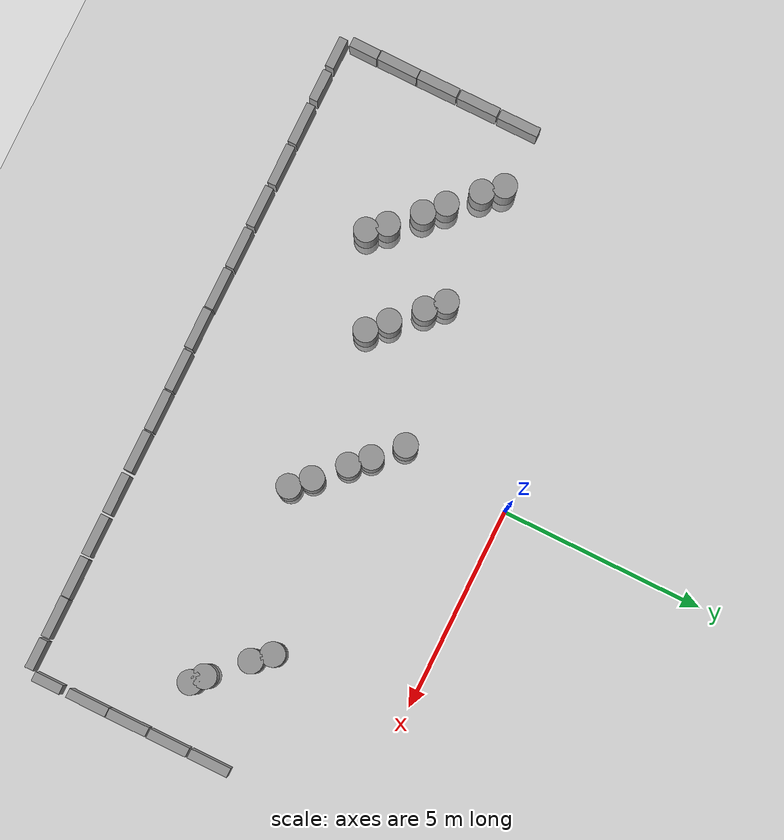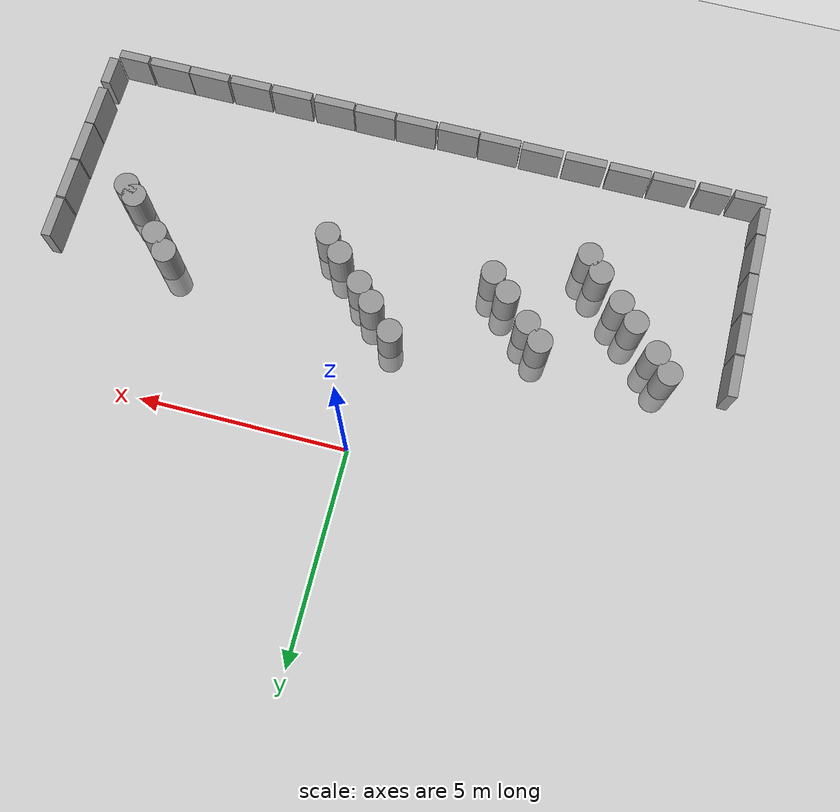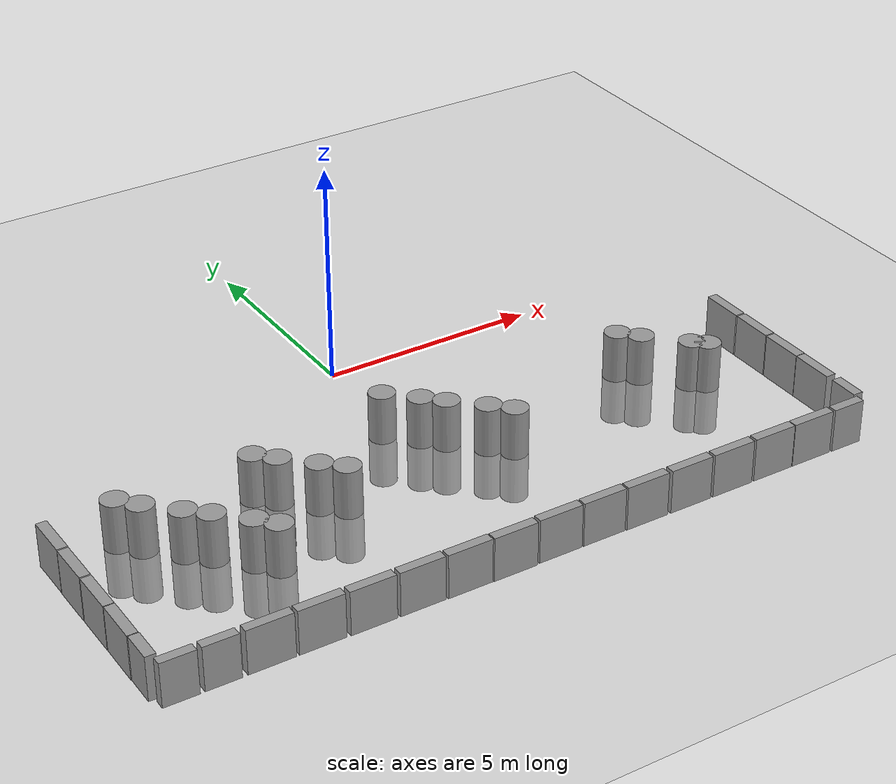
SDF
<sdf version="1.6">
 <world name="default">
  <model name="ground_plane">
   <static>1</static>
   <static>1</static>
   <link name="link">
    <collision name="collision">
     <geometry><plane><normal>0 0 1</normal><size>100 100</size></plane></geometry>
     <surface><friction><ode><mu>100</mu><mu2>50</mu2></ode></friction></surface>
    </collision>
    <visual name="visual">
     <cast_shadows>0</cast_shadows>
     <geometry><plane><normal>0 0 1</normal><size>100 100</size></plane></geometry>
     <material>
      <script><uri>file://media/materials/scripts/gazebo.material</uri><name>Gazebo/Grey</name></script>
     </material>
    </visual>
   </link>
  </model>
  <model name="unit_box_0_clone_10">
   <pose>8.12331 -3.52223 0.5 1e-06 1e-06 0.000121</pose>
   <link name="link">
    <inertial>
     <mass>1</mass>
     <inertia>
      <ixx>0.166667</ixx>
      <ixy>0</ixy>
      <ixz>0</ixz>
      <iyy>0.166667</iyy>
      <iyz>0</iyz>
      <izz>0.166667</izz>
     </inertia>
    </inertial>
    <collision name="collision"><geometry><box><size>0.230819 1 1</size></box></geometry></collision>
    <visual name="visual">
     <geometry><box><size>0.230819 1 1</size></box></geometry>
     <material>
      <script><name>Gazebo/Grey</name><uri>file://media/materials/scripts/gazebo.material</uri></script>
     </material>
    </visual>
   </link>
  </model>
  <model name="unit_box_0_clone_11">
   <pose>8.1233 -4.56316 0.5 1e-06 1e-06 0.000121</pose>
   <link name="link">
    <inertial>
     <mass>1</mass>
     <inertia>
      <ixx>0.166667</ixx>
      <ixy>0</ixy>
      <ixz>0</ixz>
      <iyy>0.166667</iyy>
      <iyz>0</iyz>
      <izz>0.166667</izz>
     </inertia>
    </inertial>
    <collision name="collision"><geometry><box><size>0.230819 1 1</size></box></geometry></collision>
    <visual name="visual">
     <geometry><box><size>0.230819 1 1</size></box></geometry>
     <material>
      <script><name>Gazebo/Grey</name><uri>file://media/materials/scripts/gazebo.material</uri></script>
     </material>
    </visual>
   </link>
  </model>
  <model name="unit_box_0_clone_12">
   <pose>8.11815 -5.59378 0.5 1e-06 1e-06 0.000121</pose>
   <link name="link">
    <inertial>
     <mass>1</mass>
     <inertia>
      <ixx>0.166667</ixx>
      <ixy>0</ixy>
      <ixz>0</ixz>
      <iyy>0.166667</iyy>
      <iyz>0</iyz>
      <izz>0.166667</izz>
     </inertia>
    </inertial>
    <collision name="collision"><geometry><box><size>0.230819 1 1</size></box></geometry></collision>
    <visual name="visual">
     <geometry><box><size>0.230819 1 1</size></box></geometry>
     <material>
      <script><name>Gazebo/Grey</name><uri>file://media/materials/scripts/gazebo.material</uri></script>
     </material>
    </visual>
   </link>
  </model>
  <model name="unit_box_0_clone_13">
   <pose>8.11333 -6.60776 0.5 -1e-06 1e-06 -0.005393</pose>
   <link name="link">
    <inertial>
     <mass>1</mass>
     <inertia>
      <ixx>0.166667</ixx>
      <ixy>0</ixy>
      <ixz>0</ixz>
      <iyy>0.166667</iyy>
      <iyz>0</iyz>
      <izz>0.166667</izz>
     </inertia>
    </inertial>
    <collision name="collision"><geometry><box><size>0.230819 1 1</size></box></geometry></collision>
    <visual name="visual">
     <geometry><box><size>0.230819 1 1</size></box></geometry>
     <material>
      <script><name>Gazebo/Grey</name><uri>file://media/materials/scripts/gazebo.material</uri></script>
     </material>
    </visual>
   </link>
  </model>
  <model name="unit_box_clone_15_clone_0">
   <pose>6.71207 -8.13102 0.499999 -1e-06 2e-06 0.00043</pose>
   <link name="link">
    <inertial>
     <mass>1</mass>
     <inertia>
      <ixx>0.166667</ixx>
      <ixy>0</ixy>
      <ixz>0</ixz>
      <iyy>0.166667</iyy>
      <iyz>0</iyz>
      <izz>0.166667</izz>
     </inertia>
    </inertial>
    <collision name="collision"><geometry><box><size>1 0.210541 1</size></box></geometry></collision>
    <visual name="visual">
     <geometry><box><size>1 0.210541 1</size></box></geometry>
     <material>
      <script><name>Gazebo/Grey</name><uri>file://media/materials/scripts/gazebo.material</uri></script>
     </material>
    </visual>
   </link>
  </model>
  <model name="unit_box_clone_15_clone_1">
   <pose>5.69715 -8.13101 0.499999 -1e-06 2e-06 0.00043</pose>
   <link name="link">
    <inertial>
     <mass>1</mass>
     <inertia>
      <ixx>0.166667</ixx>
      <ixy>0</ixy>
      <ixz>0</ixz>
      <iyy>0.166667</iyy>
      <iyz>0</iyz>
      <izz>0.166667</izz>
     </inertia>
    </inertial>
    <collision name="collision"><geometry><box><size>1 0.210541 1</size></box></geometry></collision>
    <visual name="visual">
     <geometry><box><size>1 0.210541 1</size></box></geometry>
     <material>
      <script><name>Gazebo/Grey</name><uri>file://media/materials/scripts/gazebo.material</uri></script>
     </material>
    </visual>
   </link>
  </model>
  <model name="unit_box_clone_15_clone_2">
   <pose>4.63881 -8.1372 0.499999 -1e-06 2e-06 0.00043</pose>
   <link name="link">
    <inertial>
     <mass>1</mass>
     <inertia>
      <ixx>0.166667</ixx>
      <ixy>0</ixy>
      <ixz>0</ixz>
      <iyy>0.166667</iyy>
      <iyz>0</iyz>
      <izz>0.166667</izz>
     </inertia>
    </inertial>
    <collision name="collision"><geometry><box><size>1 0.210541 1</size></box></geometry></collision>
    <visual name="visual">
     <geometry><box><size>1 0.210541 1</size></box></geometry>
     <material>
      <script><name>Gazebo/Grey</name><uri>file://media/materials/scripts/gazebo.material</uri></script>
     </material>
    </visual>
   </link>
  </model>
  <model name="unit_box_clone_15_clone_3">
   <pose>3.57975 -8.1372 0.499999 -1e-06 2e-06 0.00043</pose>
   <link name="link">
    <inertial>
     <mass>1</mass>
     <inertia>
      <ixx>0.166667</ixx>
      <ixy>0</ixy>
      <ixz>0</ixz>
      <iyy>0.166667</iyy>
      <iyz>0</iyz>
      <izz>0.166667</izz>
     </inertia>
    </inertial>
    <collision name="collision"><geometry><box><size>1 0.210541 1</size></box></geometry></collision>
    <visual name="visual">
     <geometry><box><size>1 0.210541 1</size></box></geometry>
     <material>
      <script><name>Gazebo/Grey</name><uri>file://media/materials/scripts/gazebo.material</uri></script>
     </material>
    </visual>
   </link>
  </model>
  <model name="unit_box_clone_15_clone_4">
   <pose>2.49815 -8.13719 0.499999 -1e-06 2e-06 0.00043</pose>
   <link name="link">
    <inertial>
     <mass>1</mass>
     <inertia>
      <ixx>0.166667</ixx>
      <ixy>0</ixy>
      <ixz>0</ixz>
      <iyy>0.166667</iyy>
      <iyz>0</iyz>
      <izz>0.166667</izz>
     </inertia>
    </inertial>
    <collision name="collision"><geometry><box><size>1 0.210541 1</size></box></geometry></collision>
    <visual name="visual">
     <geometry><box><size>1 0.210541 1</size></box></geometry>
     <material>
      <script><name>Gazebo/Grey</name><uri>file://media/materials/scripts/gazebo.material</uri></script>
     </material>
    </visual>
   </link>
  </model>
  <model name="unit_box_clone_15_clone_5">
   <pose>1.46162 -8.12592 0.499999 -1e-06 2e-06 0.00043</pose>
   <link name="link">
    <inertial>
     <mass>1</mass>
     <inertia>
      <ixx>0.166667</ixx>
      <ixy>0</ixy>
      <ixz>0</ixz>
      <iyy>0.166667</iyy>
      <iyz>0</iyz>
      <izz>0.166667</izz>
     </inertia>
    </inertial>
    <collision name="collision"><geometry><box><size>1 0.210541 1</size></box></geometry></collision>
    <visual name="visual">
     <geometry><box><size>1 0.210541 1</size></box></geometry>
     <material>
      <script><name>Gazebo/Grey</name><uri>file://media/materials/scripts/gazebo.material</uri></script>
     </material>
    </visual>
   </link>
  </model>
  <model name="unit_box_clone_15_clone_6">
   <pose>0.425095 -8.1259 0.499999 -1e-06 2e-06 0.00043</pose>
   <link name="link">
    <inertial>
     <mass>1</mass>
     <inertia>
      <ixx>0.166667</ixx>
      <ixy>0</ixy>
      <ixz>0</ixz>
      <iyy>0.166667</iyy>
      <iyz>0</iyz>
      <izz>0.166667</izz>
     </inertia>
    </inertial>
    <collision name="collision"><geometry><box><size>1 0.210541 1</size></box></geometry></collision>
    <visual name="visual">
     <geometry><box><size>1 0.210541 1</size></box></geometry>
     <material>
      <script><name>Gazebo/Grey</name><uri>file://media/materials/scripts/gazebo.material</uri></script>
     </material>
    </visual>
   </link>
  </model>
  <model name="unit_box_clone_15_clone_7">
   <pose>-0.633967 -8.14846 0.499999 -1e-06 2e-06 0.00043</pose>
   <link name="link">
    <inertial>
     <mass>1</mass>
     <inertia>
      <ixx>0.166667</ixx>
      <ixy>0</ixy>
      <ixz>0</ixz>
      <iyy>0.166667</iyy>
      <iyz>0</iyz>
      <izz>0.166667</izz>
     </inertia>
    </inertial>
    <collision name="collision"><geometry><box><size>1 0.210541 1</size></box></geometry></collision>
    <visual name="visual">
     <geometry><box><size>1 0.210541 1</size></box></geometry>
     <material>
      <script><name>Gazebo/Grey</name><uri>file://media/materials/scripts/gazebo.material</uri></script>
     </material>
    </visual>
   </link>
  </model>
  <model name="unit_box_clone_15_clone_8">
   <pose>-1.65923 -8.13717 0.499999 -1e-06 2e-06 0.00043</pose>
   <link name="link">
    <inertial>
     <mass>1</mass>
     <inertia>
      <ixx>0.166667</ixx>
      <ixy>0</ixy>
      <ixz>0</ixz>
      <iyy>0.166667</iyy>
      <iyz>0</iyz>
      <izz>0.166667</izz>
     </inertia>
    </inertial>
    <collision name="collision"><geometry><box><size>1 0.210541 1</size></box></geometry></collision>
    <visual name="visual">
     <geometry><box><size>1 0.210541 1</size></box></geometry>
     <material>
      <script><name>Gazebo/Grey</name><uri>file://media/materials/scripts/gazebo.material</uri></script>
     </material>
    </visual>
   </link>
  </model>
  <model name="unit_box_clone_15_clone_9">
   <pose>-2.70703 -8.12593 0.499999 -1e-06 2e-06 0.00043</pose>
   <link name="link">
    <inertial>
     <mass>1</mass>
     <inertia>
      <ixx>0.166667</ixx>
      <ixy>0</ixy>
      <ixz>0</ixz>
      <iyy>0.166667</iyy>
      <iyz>0</iyz>
      <izz>0.166667</izz>
     </inertia>
    </inertial>
    <collision name="collision"><geometry><box><size>1 0.210541 1</size></box></geometry></collision>
    <visual name="visual">
     <geometry><box><size>1 0.210541 1</size></box></geometry>
     <material>
      <script><name>Gazebo/Grey</name><uri>file://media/materials/scripts/gazebo.material</uri></script>
     </material>
    </visual>
   </link>
  </model>
  <model name="unit_box_clone_15_clone_10">
   <pose>-3.77736 -8.12592 0.499999 -1e-06 2e-06 0.00043</pose>
   <link name="link">
    <inertial>
     <mass>1</mass>
     <inertia>
      <ixx>0.166667</ixx>
      <ixy>0</ixy>
      <ixz>0</ixz>
      <iyy>0.166667</iyy>
      <iyz>0</iyz>
      <izz>0.166667</izz>
     </inertia>
    </inertial>
    <collision name="collision"><geometry><box><size>1 0.210541 1</size></box></geometry></collision>
    <visual name="visual">
     <geometry><box><size>1 0.210541 1</size></box></geometry>
     <material>
      <script><name>Gazebo/Grey</name><uri>file://media/materials/scripts/gazebo.material</uri></script>
     </material>
    </visual>
   </link>
  </model>
  <model name="unit_box_clone_15_clone_11">
   <pose>-4.85896 -8.11466 0.499999 -1e-06 2e-06 0.00043</pose>
   <link name="link">
    <inertial>
     <mass>1</mass>
     <inertia>
      <ixx>0.166667</ixx>
      <ixy>0</ixy>
      <ixz>0</ixz>
      <iyy>0.166667</iyy>
      <iyz>0</iyz>
      <izz>0.166667</izz>
     </inertia>
    </inertial>
    <collision name="collision"><geometry><box><size>1 0.210541 1</size></box></geometry></collision>
    <visual name="visual">
     <geometry><box><size>1 0.210541 1</size></box></geometry>
     <material>
      <script><name>Gazebo/Grey</name><uri>file://media/materials/scripts/gazebo.material</uri></script>
     </material>
    </visual>
   </link>
  </model>
  <model name="unit_box_clone_15_clone_12">
   <pose>-5.91802 -8.11464 0.499999 -1e-06 2e-06 0.00043</pose>
   <link name="link">
    <inertial>
     <mass>1</mass>
     <inertia>
      <ixx>0.166667</ixx>
      <ixy>0</ixy>
      <ixz>0</ixz>
      <iyy>0.166667</iyy>
      <iyz>0</iyz>
      <izz>0.166667</izz>
     </inertia>
    </inertial>
    <collision name="collision"><geometry><box><size>1 0.210541 1</size></box></geometry></collision>
    <visual name="visual">
     <geometry><box><size>1 0.210541 1</size></box></geometry>
     <material>
      <script><name>Gazebo/Grey</name><uri>file://media/materials/scripts/gazebo.material</uri></script>
     </material>
    </visual>
   </link>
  </model>
  <model name="unit_box_0_clone_4_clone_10">
   <pose>-8.13285 -3.6243 0.5 1e-06 1e-06 0.000121</pose>
   <link name="link">
    <inertial>
     <mass>1</mass>
     <inertia>
      <ixx>0.166667</ixx>
      <ixy>0</ixy>
      <ixz>0</ixz>
      <iyy>0.166667</iyy>
      <iyz>0</iyz>
      <izz>0.166667</izz>
     </inertia>
    </inertial>
    <collision name="collision"><geometry><box><size>0.230819 1 1</size></box></geometry></collision>
    <visual name="visual">
     <geometry><box><size>0.230819 1 1</size></box></geometry>
     <material>
      <script><name>Gazebo/Grey</name><uri>file://media/materials/scripts/gazebo.material</uri></script>
     </material>
    </visual>
   </link>
  </model>
  <model name="unit_box_0_clone_4_clone_11">
   <pose>-8.1396 -4.65747 0.5 1e-06 1e-06 0.000121</pose>
   <link name="link">
    <inertial>
     <mass>1</mass>
     <inertia>
      <ixx>0.166667</ixx>
      <ixy>0</ixy>
      <ixz>0</ixz>
      <iyy>0.166667</iyy>
      <iyz>0</iyz>
      <izz>0.166667</izz>
     </inertia>
    </inertial>
    <collision name="collision"><geometry><box><size>0.230819 1 1</size></box></geometry></collision>
    <visual name="visual">
     <geometry><box><size>0.230819 1 1</size></box></geometry>
     <material>
      <script><name>Gazebo/Grey</name><uri>file://media/materials/scripts/gazebo.material</uri></script>
     </material>
    </visual>
   </link>
  </model>
  <model name="unit_box_0_clone_4_clone_12">
   <pose>-8.1396 -5.69064 0.5 1e-06 1e-06 0.000121</pose>
   <link name="link">
    <inertial>
     <mass>1</mass>
     <inertia>
      <ixx>0.166667</ixx>
      <ixy>0</ixy>
      <ixz>0</ixz>
      <iyy>0.166667</iyy>
      <iyz>0</iyz>
      <izz>0.166667</izz>
     </inertia>
    </inertial>
    <collision name="collision"><geometry><box><size>0.230819 1 1</size></box></geometry></collision>
    <visual name="visual">
     <geometry><box><size>0.230819 1 1</size></box></geometry>
     <material>
      <script><name>Gazebo/Grey</name><uri>file://media/materials/scripts/gazebo.material</uri></script>
     </material>
    </visual>
   </link>
  </model>
  <model name="unit_box_0_clone_4_clone_13">
   <pose>-8.14113 -6.70872 0.5 -1e-06 1e-06 -0.008849</pose>
   <link name="link">
    <inertial>
     <mass>1</mass>
     <inertia>
      <ixx>0.166667</ixx>
      <ixy>0</ixy>
      <ixz>0</ixz>
      <iyy>0.166667</iyy>
      <iyz>0</iyz>
      <izz>0.166667</izz>
     </inertia>
    </inertial>
    <collision name="collision"><geometry><box><size>0.230819 1 1</size></box></geometry></collision>
    <visual name="visual">
     <geometry><box><size>0.230819 1 1</size></box></geometry>
     <material>
      <script><name>Gazebo/Grey</name><uri>file://media/materials/scripts/gazebo.material</uri></script>
     </material>
    </visual>
   </link>
  </model>
  <model name="unit_box_clone_11_clone_1_clone_0">
   <pose>-6.90881 -8.11956 0.499997 -3e-06 -8e-06 -0.004214</pose>
   <link name="link">
    <inertial>
     <mass>1</mass>
     <inertia>
      <ixx>0.166667</ixx>
      <ixy>0</ixy>
      <ixz>0</ixz>
      <iyy>0.166667</iyy>
      <iyz>0</iyz>
      <izz>0.166667</izz>
     </inertia>
    </inertial>
    <collision name="collision"><geometry><box><size>0.750223 0.210541 1</size></box></geometry></collision>
    <visual name="visual">
     <geometry><box><size>0.750223 0.210541 1</size></box></geometry>
     <material>
      <script><name>Gazebo/Grey</name><uri>file://media/materials/scripts/gazebo.material</uri></script>
     </material>
    </visual>
   </link>
  </model>
  <model name="unit_box_0_clone_4_clone_13_clone_clone">
   <pose>-8.13835 -7.5766 0.499997 7e-06 -1e-06 -0.011292</pose>
   <link name="link">
    <inertial>
     <mass>1</mass>
     <inertia>
      <ixx>0.166667</ixx>
      <ixy>0</ixy>
      <ixz>0</ixz>
      <iyy>0.166667</iyy>
      <iyz>0</iyz>
      <izz>0.166667</izz>
     </inertia>
    </inertial>
    <collision name="collision"><geometry><box><size>0.230819 0.700336 1</size></box></geometry></collision>
    <visual name="visual">
     <geometry><box><size>0.230819 0.700336 1</size></box></geometry>
     <material>
      <script><name>Gazebo/Grey</name><uri>file://media/materials/scripts/gazebo.material</uri></script>
     </material>
    </visual>
   </link>
  </model>
  <model name="unit_box_clone_11_clone_1_clone_0_clone">
   <pose>-7.75475 -8.12201 0.499997 -2e-06 7e-06 -0.006178</pose>
   <link name="link">
    <inertial>
     <mass>1</mass>
     <inertia>
      <ixx>0.166667</ixx>
      <ixy>0</ixy>
      <ixz>0</ixz>
      <iyy>0.166667</iyy>
      <iyz>0</iyz>
      <izz>0.166667</izz>
     </inertia>
    </inertial>
    <collision name="collision"><geometry><box><size>0.750223 0.210541 1</size></box></geometry></collision>
    <visual name="visual">
     <geometry><box><size>0.750223 0.210541 1</size></box></geometry>
     <material>
      <script><name>Gazebo/Grey</name><uri>file://media/materials/scripts/gazebo.material</uri></script>
     </material>
    </visual>
   </link>
  </model>
  <model name="unit_box_clone_11_clone_1_clone_2">
   <pose>7.64249 -8.13927 0.499997 -2e-06 7e-06 -0.00287</pose>
   <link name="link">
    <inertial>
     <mass>1</mass>
     <inertia>
      <ixx>0.166667</ixx>
      <ixy>0</ixy>
      <ixz>0</ixz>
      <iyy>0.166667</iyy>
      <iyz>0</iyz>
      <izz>0.166667</izz>
     </inertia>
    </inertial>
    <collision name="collision"><geometry><box><size>0.750223 0.210541 1</size></box></geometry></collision>
    <visual name="visual">
     <geometry><box><size>0.750223 0.210541 1</size></box></geometry>
     <material>
      <script><name>Gazebo/Grey</name><uri>file://media/materials/scripts/gazebo.material</uri></script>
     </material>
    </visual>
   </link>
  </model>
  <model name="unit_box_0_clone_4_clone_13_clone_clone_clone">
   <pose>8.11857 -7.62157 0.500001 2e-06 0 -0.010439</pose>
   <link name="link">
    <inertial>
     <mass>1</mass>
     <inertia>
      <ixx>0.166667</ixx>
      <ixy>0</ixy>
      <ixz>0</ixz>
      <iyy>0.166667</iyy>
      <iyz>0</iyz>
      <izz>0.166667</izz>
     </inertia>
    </inertial>
    <collision name="collision"><geometry><box><size>0.230819 0.700336 1</size></box></geometry></collision>
    <visual name="visual">
     <geometry><box><size>0.230819 0.700336 1</size></box></geometry>
     <material>
      <script><name>Gazebo/Grey</name><uri>file://media/materials/scripts/gazebo.material</uri></script>
     </material>
    </visual>
   </link>
  </model>
  <model name="unit_cylinder_153_clone_clone_5_clone_clone_13_clone_0_clone_29_clone_32_clone_0_clone_4_clone_46_clone_42_clone_clone_clone_4_clone">
   <static>1</static>
   <pose>6.67507 -4.71981 0 0 -0 0</pose>
   <link name="link">
    <inertial>
     <mass>1</mass>
     <inertia><ixx>0.145833</ixx><ixy>0</ixy><ixz>0</ixz><iyy>0.145833</iyy><iyz>0</iyz><izz>0.125</izz></inertia>
    </inertial>
    <collision name="collision">
     <geometry><cylinder><radius>0.295479</radius><length>2.18667</length></cylinder></geometry>
    </collision>
    <visual name="visual">
     <geometry><cylinder><radius>0.295479</radius><length>2.18667</length></cylinder></geometry>
     <material>
      <script><name>Gazebo/Grey</name><uri>file://media/materials/scripts/gazebo.material</uri></script>
     </material>
    </visual>
   </link>
  </model>
  <model name="unit_cylinder_153_clone_clone_5_clone_clone_13_clone_0_clone_29_clone_32_clone_0_clone_4_clone_46_clone_42_clone_clone_clone_4_clone_0">
   <static>1</static>
   <pose>6.41207 -4.48776 0 0 -0 0</pose>
   <link name="link">
    <inertial>
     <mass>1</mass>
     <inertia><ixx>0.145833</ixx><ixy>0</ixy><ixz>0</ixz><iyy>0.145833</iyy><iyz>0</iyz><izz>0.125</izz></inertia>
    </inertial>
    <collision name="collision">
     <geometry><cylinder><radius>0.295479</radius><length>2.18667</length></cylinder></geometry>
    </collision>
    <visual name="visual">
     <geometry><cylinder><radius>0.295479</radius><length>2.18667</length></cylinder></geometry>
     <material>
      <script><name>Gazebo/Grey</name><uri>file://media/materials/scripts/gazebo.material</uri></script>
     </material>
    </visual>
   </link>
  </model>
  <model name="unit_cylinder_153_clone_clone_5_clone_clone_13_clone_0_clone_29_clone_32_clone_0_clone_4_clone_46_clone_42_clone_clone_clone_4_clone_1">
   <static>1</static>
   <pose>5.63854 -3.69876 0 0 -0 0</pose>
   <link name="link">
    <inertial>
     <mass>1</mass>
     <inertia><ixx>0.145833</ixx><ixy>0</ixy><ixz>0</ixz><iyy>0.145833</iyy><iyz>0</iyz><izz>0.125</izz></inertia>
    </inertial>
    <collision name="collision">
     <geometry><cylinder><radius>0.295479</radius><length>2.18667</length></cylinder></geometry>
    </collision>
    <visual name="visual">
     <geometry><cylinder><radius>0.295479</radius><length>2.18667</length></cylinder></geometry>
     <material>
      <script><name>Gazebo/Grey</name><uri>file://media/materials/scripts/gazebo.material</uri></script>
     </material>
    </visual>
   </link>
  </model>
  <model name="unit_cylinder_153_clone_clone_5_clone_clone_13_clone_0_clone_29_clone_32_clone_0_clone_4_clone_46_clone_42_clone_clone_clone_4_clone_2">
   <static>1</static>
   <pose>5.28272 -3.312 0 0 -0 0</pose>
   <link name="link">
    <inertial>
     <mass>1</mass>
     <inertia><ixx>0.145833</ixx><ixy>0</ixy><ixz>0</ixz><iyy>0.145833</iyy><iyz>0</iyz><izz>0.125</izz></inertia>
    </inertial>
    <collision name="collision">
     <geometry><cylinder><radius>0.295479</radius><length>2.18667</length></cylinder></geometry>
    </collision>
    <visual name="visual">
     <geometry><cylinder><radius>0.295479</radius><length>2.18667</length></cylinder></geometry>
     <material>
      <script><name>Gazebo/Grey</name><uri>file://media/materials/scripts/gazebo.material</uri></script>
     </material>
    </visual>
   </link>
  </model>
  <model name="unit_cylinder_153_clone_clone_5_clone_clone_13_clone_0_clone_29_clone_32_clone_0_clone_4_clone_46_clone_42_clone_clone_clone_4_clone_2_clone">
   <static>1</static>
   <pose>-6.6688 -3.28274 0 0 -0 0</pose>
   <link name="link">
    <inertial>
     <mass>1</mass>
     <inertia><ixx>0.145833</ixx><ixy>0</ixy><ixz>0</ixz><iyy>0.145833</iyy><iyz>0</iyz><izz>0.125</izz></inertia>
    </inertial>
    <collision name="collision">
     <geometry><cylinder><radius>0.295479</radius><length>2.18667</length></cylinder></geometry>
    </collision>
    <visual name="visual">
     <geometry><cylinder><radius>0.295479</radius><length>2.18667</length></cylinder></geometry>
     <material>
      <script><name>Gazebo/Grey</name><uri>file://media/materials/scripts/gazebo.material</uri></script>
     </material>
    </visual>
   </link>
  </model>
  <model name="unit_cylinder_153_clone_clone_5_clone_clone_13_clone_0_clone_29_clone_32_clone_0_clone_4_clone_46_clone_42_clone_clone_clone_4_clone_2_clone_0">
   <static>1</static>
   <pose>-6.31876 -3.69564 0 0 -0 0</pose>
   <link name="link">
    <inertial>
     <mass>1</mass>
     <inertia><ixx>0.145833</ixx><ixy>0</ixy><ixz>0</ixz><iyy>0.145833</iyy><iyz>0</iyz><izz>0.125</izz></inertia>
    </inertial>
    <collision name="collision">
     <geometry><cylinder><radius>0.295479</radius><length>2.18667</length></cylinder></geometry>
    </collision>
    <visual name="visual">
     <geometry><cylinder><radius>0.295479</radius><length>2.18667</length></cylinder></geometry>
     <material>
      <script><name>Gazebo/Grey</name><uri>file://media/materials/scripts/gazebo.material</uri></script>
     </material>
    </visual>
   </link>
  </model>
  <model name="unit_cylinder_153_clone_clone_5_clone_clone_13_clone_0_clone_29_clone_32_clone_0_clone_4_clone_46_clone_42_clone_clone_clone_4_clone_2_clone_1">
   <static>1</static>
   <pose>-5.71064 -4.30377 0 0 -0 0</pose>
   <link name="link">
    <inertial>
     <mass>1</mass>
     <inertia><ixx>0.145833</ixx><ixy>0</ixy><ixz>0</ixz><iyy>0.145833</iyy><iyz>0</iyz><izz>0.125</izz></inertia>
    </inertial>
    <collision name="collision">
     <geometry><cylinder><radius>0.295479</radius><length>2.18667</length></cylinder></geometry>
    </collision>
    <visual name="visual">
     <geometry><cylinder><radius>0.295479</radius><length>2.18667</length></cylinder></geometry>
     <material>
      <script><name>Gazebo/Grey</name><uri>file://media/materials/scripts/gazebo.material</uri></script>
     </material>
    </visual>
   </link>
  </model>
  <model name="unit_cylinder_153_clone_clone_5_clone_clone_13_clone_0_clone_29_clone_32_clone_0_clone_4_clone_46_clone_42_clone_clone_clone_4_clone_2_clone_2">
   <static>1</static>
   <pose>-5.29558 -4.69953 0 0 -0 0</pose>
   <link name="link">
    <inertial>
     <mass>1</mass>
     <inertia><ixx>0.145833</ixx><ixy>0</ixy><ixz>0</ixz><iyy>0.145833</iyy><iyz>0</iyz><izz>0.125</izz></inertia>
    </inertial>
    <collision name="collision">
     <geometry><cylinder><radius>0.295479</radius><length>2.18667</length></cylinder></geometry>
    </collision>
    <visual name="visual">
     <geometry><cylinder><radius>0.295479</radius><length>2.18667</length></cylinder></geometry>
     <material>
      <script><name>Gazebo/Grey</name><uri>file://media/materials/scripts/gazebo.material</uri></script>
     </material>
    </visual>
   </link>
  </model>
  <model name="unit_cylinder_153_clone_clone_5_clone_clone_13_clone_0_clone_29_clone_32_clone_0_clone_4_clone_46_clone_42_clone_clone_clone_4_clone_2_clone_3">
   <static>1</static>
   <pose>-4.69711 -5.30766 0 0 -0 0</pose>
   <link name="link">
    <inertial>
     <mass>1</mass>
     <inertia><ixx>0.145833</ixx><ixy>0</ixy><ixz>0</ixz><iyy>0.145833</iyy><iyz>0</iyz><izz>0.125</izz></inertia>
    </inertial>
    <collision name="collision">
     <geometry><cylinder><radius>0.295479</radius><length>2.18667</length></cylinder></geometry>
    </collision>
    <visual name="visual">
     <geometry><cylinder><radius>0.295479</radius><length>2.18667</length></cylinder></geometry>
     <material>
      <script><name>Gazebo/Grey</name><uri>file://media/materials/scripts/gazebo.material</uri></script>
     </material>
    </visual>
   </link>
  </model>
  <model name="unit_cylinder_153_clone_clone_5_clone_clone_13_clone_0_clone_29_clone_32_clone_0_clone_4_clone_46_clone_42_clone_clone_clone_4_clone_2_clone_4">
   <static>1</static>
   <pose>-4.35926 -5.69377 0 0 -0 0</pose>
   <link name="link">
    <inertial>
     <mass>1</mass>
     <inertia><ixx>0.145833</ixx><ixy>0</ixy><ixz>0</ixz><iyy>0.145833</iyy><iyz>0</iyz><izz>0.125</izz></inertia>
    </inertial>
    <collision name="collision">
     <geometry><cylinder><radius>0.295479</radius><length>2.18667</length></cylinder></geometry>
    </collision>
    <visual name="visual">
     <geometry><cylinder><radius>0.295479</radius><length>2.18667</length></cylinder></geometry>
     <material>
      <script><name>Gazebo/Grey</name><uri>file://media/materials/scripts/gazebo.material</uri></script>
     </material>
    </visual>
   </link>
  </model>
  <model name="unit_cylinder_153_clone_clone_5_clone_clone_13_clone_0_clone_29_clone_32_clone_0_clone_4_clone_46_clone_42_clone_clone_clone_4_clone_2_clone_11">
   <static>1</static>
   <pose>-3.68356 -3.30955 0 0 -0 0</pose>
   <link name="link">
    <inertial>
     <mass>1</mass>
     <inertia><ixx>0.145833</ixx><ixy>0</ixy><ixz>0</ixz><iyy>0.145833</iyy><iyz>0</iyz><izz>0.125</izz></inertia>
    </inertial>
    <collision name="collision">
     <geometry><cylinder><radius>0.295479</radius><length>2.18667</length></cylinder></geometry>
    </collision>
    <visual name="visual">
     <geometry><cylinder><radius>0.295479</radius><length>2.18667</length></cylinder></geometry>
     <material>
      <script><name>Gazebo/Grey</name><uri>file://media/materials/scripts/gazebo.material</uri></script>
     </material>
    </visual>
   </link>
  </model>
  <model name="unit_cylinder_153_clone_clone_5_clone_clone_13_clone_0_clone_29_clone_32_clone_0_clone_4_clone_46_clone_42_clone_clone_clone_4_clone_2_clone_12">
   <static>1</static>
   <pose>-3.31676 -3.68601 0 0 -0 0</pose>
   <link name="link">
    <inertial>
     <mass>1</mass>
     <inertia><ixx>0.145833</ixx><ixy>0</ixy><ixz>0</ixz><iyy>0.145833</iyy><iyz>0</iyz><izz>0.125</izz></inertia>
    </inertial>
    <collision name="collision">
     <geometry><cylinder><radius>0.295479</radius><length>2.18667</length></cylinder></geometry>
    </collision>
    <visual name="visual">
     <geometry><cylinder><radius>0.295479</radius><length>2.18667</length></cylinder></geometry>
     <material>
      <script><name>Gazebo/Grey</name><uri>file://media/materials/scripts/gazebo.material</uri></script>
     </material>
    </visual>
   </link>
  </model>
  <model name="unit_cylinder_153_clone_clone_5_clone_clone_13_clone_0_clone_29_clone_32_clone_0_clone_4_clone_46_clone_42_clone_clone_clone_4_clone_2_clone_13">
   <static>1</static>
   <pose>-2.70864 -4.29413 0 0 -0 0</pose>
   <link name="link">
    <inertial>
     <mass>1</mass>
     <inertia><ixx>0.145833</ixx><ixy>0</ixy><ixz>0</ixz><iyy>0.145833</iyy><iyz>0</iyz><izz>0.125</izz></inertia>
    </inertial>
    <collision name="collision">
     <geometry><cylinder><radius>0.295479</radius><length>2.18667</length></cylinder></geometry>
    </collision>
    <visual name="visual">
     <geometry><cylinder><radius>0.295479</radius><length>2.18667</length></cylinder></geometry>
     <material>
      <script><name>Gazebo/Grey</name><uri>file://media/materials/scripts/gazebo.material</uri></script>
     </material>
    </visual>
   </link>
  </model>
  <model name="unit_cylinder_153_clone_clone_5_clone_clone_13_clone_0_clone_29_clone_32_clone_0_clone_4_clone_46_clone_42_clone_clone_clone_4_clone_2_clone_14">
   <static>1</static>
   <pose>-2.28392 -4.6899 0 0 -0 0</pose>
   <link name="link">
    <inertial>
     <mass>1</mass>
     <inertia><ixx>0.145833</ixx><ixy>0</ixy><ixz>0</ixz><iyy>0.145833</iyy><iyz>0</iyz><izz>0.125</izz></inertia>
    </inertial>
    <collision name="collision">
     <geometry><cylinder><radius>0.295479</radius><length>2.18667</length></cylinder></geometry>
    </collision>
    <visual name="visual">
     <geometry><cylinder><radius>0.295479</radius><length>2.18667</length></cylinder></geometry>
     <material>
      <script><name>Gazebo/Grey</name><uri>file://media/materials/scripts/gazebo.material</uri></script>
     </material>
    </visual>
   </link>
  </model>
  <model name="unit_cylinder_153_clone_clone_5_clone_clone_13_clone_0_clone_29_clone_32_clone_0_clone_4_clone_46_clone_42_clone_clone_clone_4_clone_2_clone_16_clone_8">
   <static>1</static>
   <pose>-0.31392 -2.69767 0 0 -0 0</pose>
   <link name="link">
    <inertial>
     <mass>1</mass>
     <inertia><ixx>0.145833</ixx><ixy>0</ixy><ixz>0</ixz><iyy>0.145833</iyy><iyz>0</iyz><izz>0.125</izz></inertia>
    </inertial>
    <collision name="collision">
     <geometry><cylinder><radius>0.295479</radius><length>2.18667</length></cylinder></geometry>
    </collision>
    <visual name="visual">
     <geometry><cylinder><radius>0.295479</radius><length>2.18667</length></cylinder></geometry>
     <material>
      <script><name>Gazebo/Grey</name><uri>file://media/materials/scripts/gazebo.material</uri></script>
     </material>
    </visual>
   </link>
  </model>
  <model name="unit_cylinder_153_clone_clone_5_clone_clone_13_clone_0_clone_29_clone_32_clone_0_clone_4_clone_46_clone_42_clone_clone_clone_4_clone_2_clone_16_clone_9">
   <static>1</static>
   <pose>0.276826 -3.28073 0 0 -0 0</pose>
   <link name="link">
    <inertial>
     <mass>1</mass>
     <inertia><ixx>0.145833</ixx><ixy>0</ixy><ixz>0</ixz><iyy>0.145833</iyy><iyz>0</iyz><izz>0.125</izz></inertia>
    </inertial>
    <collision name="collision">
     <geometry><cylinder><radius>0.295479</radius><length>2.18667</length></cylinder></geometry>
    </collision>
    <visual name="visual">
     <geometry><cylinder><radius>0.295479</radius><length>2.18667</length></cylinder></geometry>
     <material>
      <script><name>Gazebo/Grey</name><uri>file://media/materials/scripts/gazebo.material</uri></script>
     </material>
    </visual>
   </link>
  </model>
  <model name="unit_cylinder_153_clone_clone_5_clone_clone_13_clone_0_clone_29_clone_32_clone_0_clone_4_clone_46_clone_42_clone_clone_clone_4_clone_2_clone_16_clone_10">
   <static>1</static>
   <pose>0.663747 -3.67812 0 0 -0 0</pose>
   <link name="link">
    <inertial>
     <mass>1</mass>
     <inertia><ixx>0.145833</ixx><ixy>0</ixy><ixz>0</ixz><iyy>0.145833</iyy><iyz>0</iyz><izz>0.125</izz></inertia>
    </inertial>
    <collision name="collision">
     <geometry><cylinder><radius>0.295479</radius><length>2.18667</length></cylinder></geometry>
    </collision>
    <visual name="visual">
     <geometry><cylinder><radius>0.295479</radius><length>2.18667</length></cylinder></geometry>
     <material>
      <script><name>Gazebo/Grey</name><uri>file://media/materials/scripts/gazebo.material</uri></script>
     </material>
    </visual>
   </link>
  </model>
  <model name="unit_cylinder_153_clone_clone_5_clone_clone_13_clone_0_clone_29_clone_32_clone_0_clone_4_clone_46_clone_42_clone_clone_clone_4_clone_2_clone_16_clone_11">
   <static>1</static>
   <pose>1.30164 -4.28465 0 0 -0 0</pose>
   <link name="link">
    <inertial>
     <mass>1</mass>
     <inertia><ixx>0.145833</ixx><ixy>0</ixy><ixz>0</ixz><iyy>0.145833</iyy><iyz>0</iyz><izz>0.125</izz></inertia>
    </inertial>
    <collision name="collision">
     <geometry><cylinder><radius>0.295479</radius><length>2.18667</length></cylinder></geometry>
    </collision>
    <visual name="visual">
     <geometry><cylinder><radius>0.295479</radius><length>2.18667</length></cylinder></geometry>
     <material>
      <script><name>Gazebo/Grey</name><uri>file://media/materials/scripts/gazebo.material</uri></script>
     </material>
    </visual>
   </link>
  </model>
  <model name="unit_cylinder_153_clone_clone_5_clone_clone_13_clone_0_clone_29_clone_32_clone_0_clone_4_clone_46_clone_42_clone_clone_clone_4_clone_2_clone_16_clone_12">
   <static>1</static>
   <pose>1.69902 -4.68203 0 0 -0 0</pose>
   <link name="link">
    <inertial>
     <mass>1</mass>
     <inertia><ixx>0.145833</ixx><ixy>0</ixy><ixz>0</ixz><iyy>0.145833</iyy><iyz>0</iyz><izz>0.125</izz></inertia>
    </inertial>
    <collision name="collision">
     <geometry><cylinder><radius>0.295479</radius><length>2.18667</length></cylinder></geometry>
    </collision>
    <visual name="visual">
     <geometry><cylinder><radius>0.295479</radius><length>2.18667</length></cylinder></geometry>
     <material>
      <script><name>Gazebo/Grey</name><uri>file://media/materials/scripts/gazebo.material</uri></script>
     </material>
    </visual>
   </link>
  </model>
 </world>
</sdf>
